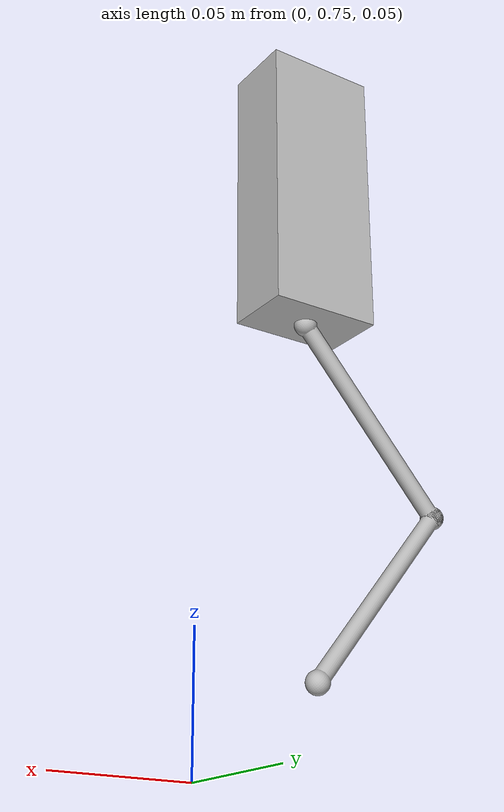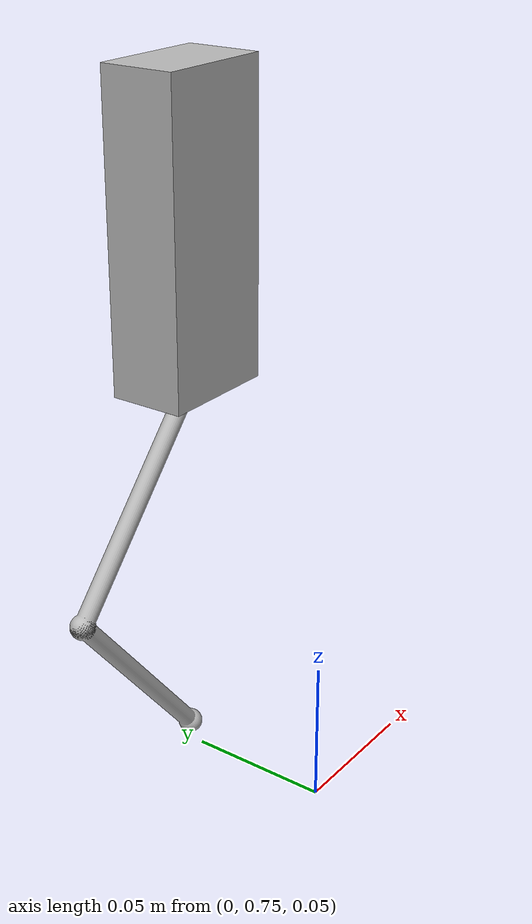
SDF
<?xml version="1.0" ?>
<sdf version="1.5">
	<model name="BertModel_new">
		<pose>0.0 0.8 0.2 1.5707963705062866 -0.0 0.0</pose>
        <link name="base_link">
			<pose>-0.019999999553 0.0 0.0125000001863 0.0 -0.0 -0.0</pose>
			<inertial>
                <mass>0.452</mass> <!-- 0.49 minus help link(0.038) -->
				<pose>0.0 0.05 0 0 0 0</pose>
				<inertia>
					<ixx>0.0004</ixx>
					<ixy>0.0000</ixy>
					<ixz>0.0000</ixz>
					<iyy>0.0001</iyy>
					<iyz>0.0000</iyz>
					<izz>0.0005</izz>
				</inertia>
			</inertial>
			<collision name="COL_Cube">
                <pose>0.01999695599079132 0.0003489553928375244 -0.012500000186264515 -9.920884114222872e-10 1.4551845839427813e-11 0.0</pose>
				<geometry>
					<mesh>
						<uri>model://BertModel_new/meshes/collisions/COL_RigidGroup8_collision.dae</uri>
						<scale>0.0010000000474974513 0.0010000000474974513 0.0010000000474974513</scale>
					</mesh>
				</geometry>
			</collision>
			<visual name="VIS_Cube">
                <pose>0.01999695599079132 0.0003489553928375244 -0.012500000186264515 -9.920884114222872e-10 1.4551845839427813e-11 0.0</pose>
				<geometry>
					<mesh>
						<uri>model://BertModel_new/meshes/visual/VIS_RigidGroup8_visual.dae</uri>
						<scale>0.0010000001639127731 0.0010000000474974513 0.0010000000474974513</scale>
					</mesh>
				</geometry>
            </visual>
        </link>

        <link name="help_link">
            <pose>-0.019999999553 0.05 0.0125000001863 0.0 -0.0 -2.4609142954098147</pose>
			<inertial>
				<mass>0.038</mass>
				<pose>0 0.0 0 0 0 0</pose>
				<inertia>
					<ixx>0.00002</ixx>
					<ixy>0.00</ixy>
					<ixz>0.00</ixz>
					<iyy>0.00002</iyy>
					<iyz>0.00</iyz>
					<izz>0.0000006</izz>
				</inertia>
            </inertial>
            <visual name="visual1">
                <geometry>
                    <cylinder>
                        <length>0.01</length>
                        <radius>0.01</radius>
                    </cylinder>
                </geometry>
                <material>
                    <script><uri>file://media/materials/scripts/gazebo.material</uri><name>Gazebo/Green</name></script>
                </material>
            </visual>
        </link>

		<link name="link1_link">
            <pose>-0.019999999553 0.0 0.0125000001863 0.0 -0.0 2.4260076507925987</pose>
			<inertial>
				<mass>0.059</mass>
                <pose>0 0.04 0 0 0 0</pose>
				<inertia>
					<ixx>0.00003</ixx>
					<ixy>0.0</ixy>
					<ixz>0.0</ixz>
					<iyy>0.000001</iyy>
					<iyz>0.0</iyz>
					<izz>0.00003</izz>
                </inertia>
			</inertial>
			<collision name="COL_link1_link">
                <pose>4.705399987869896e-06 -5.6006747399806045e-06 -1.0031984132297112e-09 -1.3460327963343843e-08 1.054284304302655e-08 -2.4434611797332764</pose>
				<geometry>
					<mesh>
						<uri>model://BertModel_new/meshes/collisions/COL_RigidGroup6_collision.dae</uri>
						<scale>0.0010000000474974513 0.0009999999310821295 0.0010000000474974513</scale>
					</mesh>
				</geometry>
			</collision>
			<visual name="VIS_link1_link">
				<pose>4.705399987869896e-06 -5.6006747399806045e-06 -1.0031984132297112e-09 -1.3460327963343843e-08 1.054284304302655e-08 -2.4434611797332764</pose>
				<geometry>
					<mesh>
						<uri>model://BertModel_new/meshes/visual/VIS_RigidGroup6_visual.dae</uri>
						<scale>0.0010000000474974513 0.0009999999310821295 0.0010000000474974513</scale>
					</mesh>
				</geometry>
			</visual>
        </link>
		<link name="link2_link">
            <pose>-0.0724847212715 -0.0603767645708 0.0125000001863 0.0 -0.0 -2.4609142954098147</pose>
			<inertial>
				<mass>0.038</mass>
                <pose>0 0.04 0 0 0 0</pose>
				<inertia>
					<ixx>0.00002</ixx>
					<ixy>0.0</ixy>
					<ixz>0.0</ixz>
					<iyy>0.0000006</iyy>
					<iyz>0.0</iyz>
					<izz>0.00002</izz>
                </inertia>
            </inertial>
			<collision name="COL_link2_link">
				<pose>-4.898909367057058e-08 4.05635137212812e-06 -1.8410344360120234e-09 -1.6302406535828595e-08 7.631084031345381e-08 2.4434609413146973</pose>
				<geometry>
					<mesh>
						<uri>model://BertModel_new/meshes/collisions/COL_RigidGroup7_collision.dae</uri>
						<scale>0.0010000003967434168 0.0010000003967434168 0.0010000000474974513</scale>
					</mesh>
                </geometry>
                <surface>
                    <friction>
                        <ode>
                            <mu>1.0</mu>
                            <mu2>1.0</mu2>
                            <fdir1>1 0 0</fdir1>
                            <minDepth>0.003</minDepth>
                        </ode>
                    </friction>
                    <contact>
                        <collide_without_contact>0</collide_without_contact>
                        <collide_without_contact_bitmask>1</collide_without_contact_bitmask>
                        <collide_bitmask>1</collide_bitmask>
                        <ode>
                          <soft_cfm>0</soft_cfm>
                          <soft_erp>0.2</soft_erp>
                          <kp>1e+5</kp>
                          <kd>1e+12</kd>
                          <max_vel>10</max_vel>
                          <min_depth>0</min_depth>
                        </ode>
                    </contact>
                </surface>
            </collision>
			<visual name="VIS_link2_link">
				<pose>-4.898909367057058e-08 4.05635137212812e-06 -1.8410344360120234e-09 -1.6302406535828595e-08 7.631084031345381e-08 2.4434609413146973</pose>
				<geometry>
					<mesh>
						<uri>model://BertModel_new/meshes/visual/VIS_RigidGroup7_visual.dae</uri>
						<scale>0.0010000003967434168 0.0010000003967434168 0.0010000000474974513</scale>
					</mesh>
				</geometry>
            </visual>
            <sensor type="contact" name="your_link_contact_sensor">
                <update_rate>1000.0</update_rate>
                <always_on>1</always_on>
                <contact>
                    <collision>COL_link2_link</collision>
                </contact>
                <plugin name="gazebo_ros_bumper_controller" filename="libgazebo_ros_bumper.so">
                    <alwaysOn>true</alwaysOn>
                    <updateRate>1000.0</updateRate>
                    <bumperTopicName>/robot_bumper</bumperTopicName>
                    <frameName>world</frameName>
                </plugin>
            </sensor>
        </link>

		<joint name="link1" type="revolute">
			<parent>base_link</parent>
			<child>link1_link</child>
			<axis>
                <xyz>0.0 0.0 1.0</xyz>
                <initial_position>0.5</initial_position>
				<dynamics>
					<damping>0.0219</damping>
					<spring_stiffness>1.46</spring_stiffness>
                </dynamics>
			</axis>
        </joint>

        <joint name="link2" type="revolute">
			<parent>link1_link</parent>
            <child>link2_link</child>
			<axis>
                <xyz>0.0 0.0 1.0</xyz>
                <use_parent_model_frame>0</use_parent_model_frame>
            </axis>
        </joint>

		<joint name="gear1" type="gearbox">
			<parent>help_link</parent>
            <child>link2_link</child>
            <gearbox_reference_body>base_link</gearbox_reference_body>
			<axis>
                <xyz>0.0 0.0 1.0</xyz>
            </axis>
			<axis2>
                <xyz>0.0 0.0 1.0</xyz>
            </axis2>
        </joint>

        <joint name="link3" type="revolute">
			<parent>base_link</parent>
			<child>help_link</child>
			<axis>
                <xyz>0.0 0.0 1.0</xyz>
                <dynamics>
                    <damping>0.0219</damping>
					<spring_stiffness>1.46</spring_stiffness>
                </dynamics>
            </axis>
        </joint>

        <!-- World fixation -->
		<!-- helper link -->
		<link name="world1_link">
			<pose>0.0 0.0 3.5 1.5707963705062866 -0.0 0.0</pose>
			<inertial>
				<mass>0.0001</mass>
				<pose>0.0 -3.5 1.5438634193287726e-07 -1.5707963705062866 -0.0 0.0</pose>
				<inertia>
					<ixx>0.01</ixx>
					<ixy>0.0</ixy>
					<ixz>0.0</ixz>
					<iyy>0.01</iyy>
					<iyz>0.0</iyz>
					<izz>0.01</izz>
				</inertia>
			</inertial>
		</link>

		<!-- horizontal -->
		<joint name="world_1" type="prismatic">
			<parent>world</parent>
			<child>world1_link</child>
			<axis>
				<xyz>1.0 0.0 0.0</xyz>
				<limit>
					<lower>-10.0</lower>
					<upper>10.0</upper>
				</limit>
			</axis>
		</joint>

		<!-- vertical -->
		<joint name="world_2" type="prismatic">
			<parent>world1_link</parent>
			<child>base_link</child>
			<axis>
				<xyz>0.0 1.0 0.0</xyz>
				<limit>
					<lower>-2.0</lower>
					<upper>10.0</upper>
                </limit>
			</axis>
        </joint>

        <plugin name='generic_controller' filename='libgeneric_controller_plugin.so'>
            <updateRate>1000.0</updateRate>
        </plugin>

        <plugin name="gazebo_ros_force" filename="libgazebo_ros_force.so">
            <alwaysOn>true</alwaysOn>
            <updateRate>1000.0</updateRate>
            <bodyName>base_link</bodyName>
            <topicName>force_base</topicName>
        </plugin>

	</model>
</sdf>
